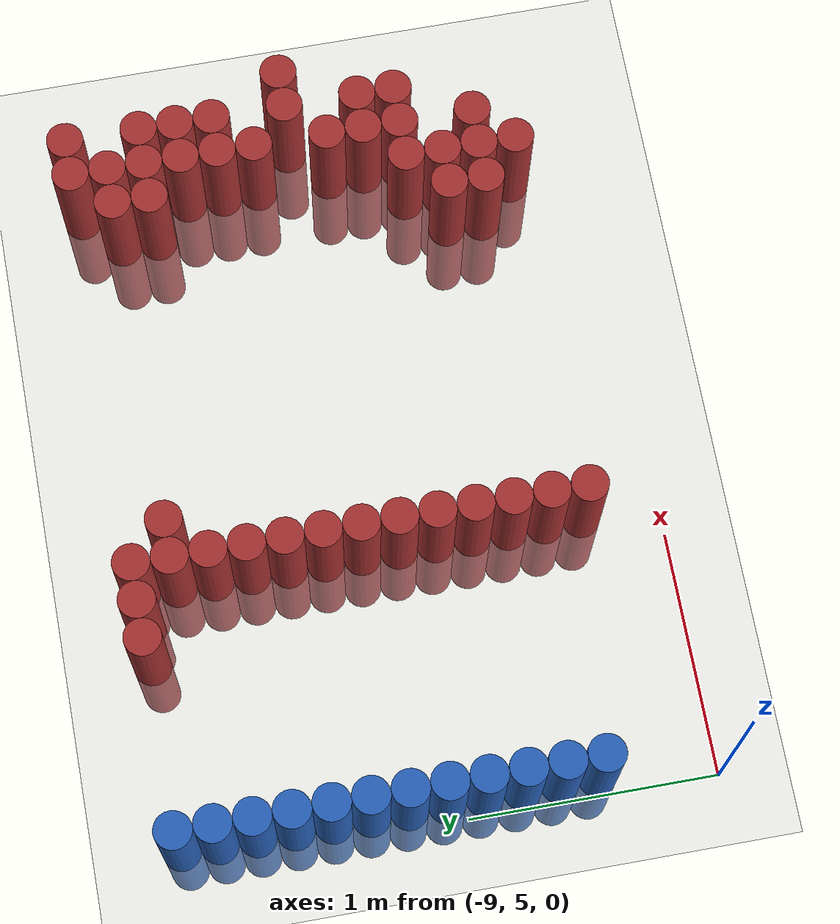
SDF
<sdf version="1.6">
 <world name="default">
  <model name="ground_plane">
   <static>1</static>
   <link name="link">
    <collision name="collision">
     <geometry><plane><normal>0 0 1</normal><size>100 100</size></plane></geometry>
     <surface><friction><ode><mu>100</mu><mu2>50</mu2></ode></friction></surface>
    </collision>
    <visual name="visual">
     <cast_shadows>0</cast_shadows>
     <geometry><plane><normal>0 0 1</normal><size>100 100</size></plane></geometry>
     <material>
      <script><uri>file://media/materials/scripts/gazebo.material</uri><name>Gazebo/Grey</name></script>
     </material>
    </visual>
   </link>
  </model>
  <model name="unit_cylinder_127">
   <static>1</static>
   <pose>-8.925000 5.475000 0.000000 0.000000 0.000000 0.000000</pose>
   <link name="link">
    <inertial>
     <mass>1</mass>
     <inertia><ixx>0.145833</ixx><ixy>0</ixy><ixz>0</ixz><iyy>0.145833</iyy><iyz>0</iyz><izz>0.125</izz></inertia>
    </inertial>
    <collision name="collision">
     <geometry><cylinder><radius>0.075000</radius><length>1</length></cylinder></geometry>
    </collision>
    <visual name="visual">
     <geometry><cylinder><radius>0.075000</radius><length>1</length></cylinder></geometry>
     <material>
      <ambient>0.152000 0.379000 0.720000 1</ambient>
      <diffuse>0.152000 0.379000 0.720000 1</diffuse>
     </material>
     <material>
      <script><name>Gazebo/Grey</name><uri>file://media/materials/scripts/gazebo.material</uri></script>
     </material>
    </visual>
   </link>
  </model>
  <model name="unit_cylinder_128">
   <static>1</static>
   <pose>-8.925000 5.625000 0.000000 0.000000 0.000000 0.000000</pose>
   <link name="link">
    <inertial>
     <mass>1</mass>
     <inertia><ixx>0.145833</ixx><ixy>0</ixy><ixz>0</ixz><iyy>0.145833</iyy><iyz>0</iyz><izz>0.125</izz></inertia>
    </inertial>
    <collision name="collision">
     <geometry><cylinder><radius>0.075000</radius><length>1</length></cylinder></geometry>
    </collision>
    <visual name="visual">
     <geometry><cylinder><radius>0.075000</radius><length>1</length></cylinder></geometry>
     <material>
      <ambient>0.152000 0.379000 0.720000 1</ambient>
      <diffuse>0.152000 0.379000 0.720000 1</diffuse>
     </material>
     <material>
      <script><name>Gazebo/Grey</name><uri>file://media/materials/scripts/gazebo.material</uri></script>
     </material>
    </visual>
   </link>
  </model>
  <model name="unit_cylinder_129">
   <static>1</static>
   <pose>-8.925000 5.775000 0.000000 0.000000 0.000000 0.000000</pose>
   <link name="link">
    <inertial>
     <mass>1</mass>
     <inertia><ixx>0.145833</ixx><ixy>0</ixy><ixz>0</ixz><iyy>0.145833</iyy><iyz>0</iyz><izz>0.125</izz></inertia>
    </inertial>
    <collision name="collision">
     <geometry><cylinder><radius>0.075000</radius><length>1</length></cylinder></geometry>
    </collision>
    <visual name="visual">
     <geometry><cylinder><radius>0.075000</radius><length>1</length></cylinder></geometry>
     <material>
      <ambient>0.152000 0.379000 0.720000 1</ambient>
      <diffuse>0.152000 0.379000 0.720000 1</diffuse>
     </material>
     <material>
      <script><name>Gazebo/Grey</name><uri>file://media/materials/scripts/gazebo.material</uri></script>
     </material>
    </visual>
   </link>
  </model>
  <model name="unit_cylinder_130">
   <static>1</static>
   <pose>-8.925000 5.925000 0.000000 0.000000 0.000000 0.000000</pose>
   <link name="link">
    <inertial>
     <mass>1</mass>
     <inertia><ixx>0.145833</ixx><ixy>0</ixy><ixz>0</ixz><iyy>0.145833</iyy><iyz>0</iyz><izz>0.125</izz></inertia>
    </inertial>
    <collision name="collision">
     <geometry><cylinder><radius>0.075000</radius><length>1</length></cylinder></geometry>
    </collision>
    <visual name="visual">
     <geometry><cylinder><radius>0.075000</radius><length>1</length></cylinder></geometry>
     <material>
      <ambient>0.152000 0.379000 0.720000 1</ambient>
      <diffuse>0.152000 0.379000 0.720000 1</diffuse>
     </material>
     <material>
      <script><name>Gazebo/Grey</name><uri>file://media/materials/scripts/gazebo.material</uri></script>
     </material>
    </visual>
   </link>
  </model>
  <model name="unit_cylinder_131">
   <static>1</static>
   <pose>-8.925000 6.075000 0.000000 0.000000 0.000000 0.000000</pose>
   <link name="link">
    <inertial>
     <mass>1</mass>
     <inertia><ixx>0.145833</ixx><ixy>0</ixy><ixz>0</ixz><iyy>0.145833</iyy><iyz>0</iyz><izz>0.125</izz></inertia>
    </inertial>
    <collision name="collision">
     <geometry><cylinder><radius>0.075000</radius><length>1</length></cylinder></geometry>
    </collision>
    <visual name="visual">
     <geometry><cylinder><radius>0.075000</radius><length>1</length></cylinder></geometry>
     <material>
      <ambient>0.152000 0.379000 0.720000 1</ambient>
      <diffuse>0.152000 0.379000 0.720000 1</diffuse>
     </material>
     <material>
      <script><name>Gazebo/Grey</name><uri>file://media/materials/scripts/gazebo.material</uri></script>
     </material>
    </visual>
   </link>
  </model>
  <model name="unit_cylinder_132">
   <static>1</static>
   <pose>-8.925000 6.225000 0.000000 0.000000 0.000000 0.000000</pose>
   <link name="link">
    <inertial>
     <mass>1</mass>
     <inertia><ixx>0.145833</ixx><ixy>0</ixy><ixz>0</ixz><iyy>0.145833</iyy><iyz>0</iyz><izz>0.125</izz></inertia>
    </inertial>
    <collision name="collision">
     <geometry><cylinder><radius>0.075000</radius><length>1</length></cylinder></geometry>
    </collision>
    <visual name="visual">
     <geometry><cylinder><radius>0.075000</radius><length>1</length></cylinder></geometry>
     <material>
      <ambient>0.152000 0.379000 0.720000 1</ambient>
      <diffuse>0.152000 0.379000 0.720000 1</diffuse>
     </material>
     <material>
      <script><name>Gazebo/Grey</name><uri>file://media/materials/scripts/gazebo.material</uri></script>
     </material>
    </visual>
   </link>
  </model>
  <model name="unit_cylinder_133">
   <static>1</static>
   <pose>-8.925000 6.375000 0.000000 0.000000 0.000000 0.000000</pose>
   <link name="link">
    <inertial>
     <mass>1</mass>
     <inertia><ixx>0.145833</ixx><ixy>0</ixy><ixz>0</ixz><iyy>0.145833</iyy><iyz>0</iyz><izz>0.125</izz></inertia>
    </inertial>
    <collision name="collision">
     <geometry><cylinder><radius>0.075000</radius><length>1</length></cylinder></geometry>
    </collision>
    <visual name="visual">
     <geometry><cylinder><radius>0.075000</radius><length>1</length></cylinder></geometry>
     <material>
      <ambient>0.152000 0.379000 0.720000 1</ambient>
      <diffuse>0.152000 0.379000 0.720000 1</diffuse>
     </material>
     <material>
      <script><name>Gazebo/Grey</name><uri>file://media/materials/scripts/gazebo.material</uri></script>
     </material>
    </visual>
   </link>
  </model>
  <model name="unit_cylinder_134">
   <static>1</static>
   <pose>-8.925000 6.525000 0.000000 0.000000 0.000000 0.000000</pose>
   <link name="link">
    <inertial>
     <mass>1</mass>
     <inertia><ixx>0.145833</ixx><ixy>0</ixy><ixz>0</ixz><iyy>0.145833</iyy><iyz>0</iyz><izz>0.125</izz></inertia>
    </inertial>
    <collision name="collision">
     <geometry><cylinder><radius>0.075000</radius><length>1</length></cylinder></geometry>
    </collision>
    <visual name="visual">
     <geometry><cylinder><radius>0.075000</radius><length>1</length></cylinder></geometry>
     <material>
      <ambient>0.152000 0.379000 0.720000 1</ambient>
      <diffuse>0.152000 0.379000 0.720000 1</diffuse>
     </material>
     <material>
      <script><name>Gazebo/Grey</name><uri>file://media/materials/scripts/gazebo.material</uri></script>
     </material>
    </visual>
   </link>
  </model>
  <model name="unit_cylinder_135">
   <static>1</static>
   <pose>-8.925000 6.675000 0.000000 0.000000 0.000000 0.000000</pose>
   <link name="link">
    <inertial>
     <mass>1</mass>
     <inertia><ixx>0.145833</ixx><ixy>0</ixy><ixz>0</ixz><iyy>0.145833</iyy><iyz>0</iyz><izz>0.125</izz></inertia>
    </inertial>
    <collision name="collision">
     <geometry><cylinder><radius>0.075000</radius><length>1</length></cylinder></geometry>
    </collision>
    <visual name="visual">
     <geometry><cylinder><radius>0.075000</radius><length>1</length></cylinder></geometry>
     <material>
      <ambient>0.152000 0.379000 0.720000 1</ambient>
      <diffuse>0.152000 0.379000 0.720000 1</diffuse>
     </material>
     <material>
      <script><name>Gazebo/Grey</name><uri>file://media/materials/scripts/gazebo.material</uri></script>
     </material>
    </visual>
   </link>
  </model>
  <model name="unit_cylinder_136">
   <static>1</static>
   <pose>-8.925000 6.825000 0.000000 0.000000 0.000000 0.000000</pose>
   <link name="link">
    <inertial>
     <mass>1</mass>
     <inertia><ixx>0.145833</ixx><ixy>0</ixy><ixz>0</ixz><iyy>0.145833</iyy><iyz>0</iyz><izz>0.125</izz></inertia>
    </inertial>
    <collision name="collision">
     <geometry><cylinder><radius>0.075000</radius><length>1</length></cylinder></geometry>
    </collision>
    <visual name="visual">
     <geometry><cylinder><radius>0.075000</radius><length>1</length></cylinder></geometry>
     <material>
      <ambient>0.152000 0.379000 0.720000 1</ambient>
      <diffuse>0.152000 0.379000 0.720000 1</diffuse>
     </material>
     <material>
      <script><name>Gazebo/Grey</name><uri>file://media/materials/scripts/gazebo.material</uri></script>
     </material>
    </visual>
   </link>
  </model>
  <model name="unit_cylinder_137">
   <static>1</static>
   <pose>-8.925000 6.975000 0.000000 0.000000 0.000000 0.000000</pose>
   <link name="link">
    <inertial>
     <mass>1</mass>
     <inertia><ixx>0.145833</ixx><ixy>0</ixy><ixz>0</ixz><iyy>0.145833</iyy><iyz>0</iyz><izz>0.125</izz></inertia>
    </inertial>
    <collision name="collision">
     <geometry><cylinder><radius>0.075000</radius><length>1</length></cylinder></geometry>
    </collision>
    <visual name="visual">
     <geometry><cylinder><radius>0.075000</radius><length>1</length></cylinder></geometry>
     <material>
      <ambient>0.152000 0.379000 0.720000 1</ambient>
      <diffuse>0.152000 0.379000 0.720000 1</diffuse>
     </material>
     <material>
      <script><name>Gazebo/Grey</name><uri>file://media/materials/scripts/gazebo.material</uri></script>
     </material>
    </visual>
   </link>
  </model>
  <model name="unit_cylinder_138">
   <static>1</static>
   <pose>-8.925000 7.125000 0.000000 0.000000 0.000000 0.000000</pose>
   <link name="link">
    <inertial>
     <mass>1</mass>
     <inertia><ixx>0.145833</ixx><ixy>0</ixy><ixz>0</ixz><iyy>0.145833</iyy><iyz>0</iyz><izz>0.125</izz></inertia>
    </inertial>
    <collision name="collision">
     <geometry><cylinder><radius>0.075000</radius><length>1</length></cylinder></geometry>
    </collision>
    <visual name="visual">
     <geometry><cylinder><radius>0.075000</radius><length>1</length></cylinder></geometry>
     <material>
      <ambient>0.152000 0.379000 0.720000 1</ambient>
      <diffuse>0.152000 0.379000 0.720000 1</diffuse>
     </material>
     <material>
      <script><name>Gazebo/Grey</name><uri>file://media/materials/scripts/gazebo.material</uri></script>
     </material>
    </visual>
   </link>
  </model>
  <model name="unit_cylinder_164">
   <static>1</static>
   <pose>-8.175000 7.125000 0.000000 0.000000 0.000000 0.000000</pose>
   <link name="link">
    <inertial>
     <mass>1</mass>
     <inertia><ixx>0.145833</ixx><ixy>0</ixy><ixz>0</ixz><iyy>0.145833</iyy><iyz>0</iyz><izz>0.125</izz></inertia>
    </inertial>
    <collision name="collision">
     <geometry><cylinder><radius>0.075000</radius><length>1</length></cylinder></geometry>
    </collision>
    <visual name="visual">
     <geometry><cylinder><radius>0.075000</radius><length>1</length></cylinder></geometry>
     <material>
      <ambient>0.648000 0.192000 0.192000 1</ambient>
      <diffuse>0.648000 0.192000 0.192000 1</diffuse>
     </material>
     <material>
      <script><name>Gazebo/Grey</name><uri>file://media/materials/scripts/gazebo.material</uri></script>
     </material>
    </visual>
   </link>
  </model>
  <model name="unit_cylinder_182">
   <static>1</static>
   <pose>-8.025000 7.125000 0.000000 0.000000 0.000000 0.000000</pose>
   <link name="link">
    <inertial>
     <mass>1</mass>
     <inertia><ixx>0.145833</ixx><ixy>0</ixy><ixz>0</ixz><iyy>0.145833</iyy><iyz>0</iyz><izz>0.125</izz></inertia>
    </inertial>
    <collision name="collision">
     <geometry><cylinder><radius>0.075000</radius><length>1</length></cylinder></geometry>
    </collision>
    <visual name="visual">
     <geometry><cylinder><radius>0.075000</radius><length>1</length></cylinder></geometry>
     <material>
      <ambient>0.648000 0.192000 0.192000 1</ambient>
      <diffuse>0.648000 0.192000 0.192000 1</diffuse>
     </material>
     <material>
      <script><name>Gazebo/Grey</name><uri>file://media/materials/scripts/gazebo.material</uri></script>
     </material>
    </visual>
   </link>
  </model>
  <model name="unit_cylinder_184">
   <static>1</static>
   <pose>-7.875000 5.325000 0.000000 0.000000 0.000000 0.000000</pose>
   <link name="link">
    <inertial>
     <mass>1</mass>
     <inertia><ixx>0.145833</ixx><ixy>0</ixy><ixz>0</ixz><iyy>0.145833</iyy><iyz>0</iyz><izz>0.125</izz></inertia>
    </inertial>
    <collision name="collision">
     <geometry><cylinder><radius>0.075000</radius><length>1</length></cylinder></geometry>
    </collision>
    <visual name="visual">
     <geometry><cylinder><radius>0.075000</radius><length>1</length></cylinder></geometry>
     <material>
      <ambient>0.648000 0.192000 0.192000 1</ambient>
      <diffuse>0.648000 0.192000 0.192000 1</diffuse>
     </material>
     <material>
      <script><name>Gazebo/Grey</name><uri>file://media/materials/scripts/gazebo.material</uri></script>
     </material>
    </visual>
   </link>
  </model>
  <model name="unit_cylinder_185">
   <static>1</static>
   <pose>-7.875000 5.475000 0.000000 0.000000 0.000000 0.000000</pose>
   <link name="link">
    <inertial>
     <mass>1</mass>
     <inertia><ixx>0.145833</ixx><ixy>0</ixy><ixz>0</ixz><iyy>0.145833</iyy><iyz>0</iyz><izz>0.125</izz></inertia>
    </inertial>
    <collision name="collision">
     <geometry><cylinder><radius>0.075000</radius><length>1</length></cylinder></geometry>
    </collision>
    <visual name="visual">
     <geometry><cylinder><radius>0.075000</radius><length>1</length></cylinder></geometry>
     <material>
      <ambient>0.648000 0.192000 0.192000 1</ambient>
      <diffuse>0.648000 0.192000 0.192000 1</diffuse>
     </material>
     <material>
      <script><name>Gazebo/Grey</name><uri>file://media/materials/scripts/gazebo.material</uri></script>
     </material>
    </visual>
   </link>
  </model>
  <model name="unit_cylinder_186">
   <static>1</static>
   <pose>-7.875000 5.625000 0.000000 0.000000 0.000000 0.000000</pose>
   <link name="link">
    <inertial>
     <mass>1</mass>
     <inertia><ixx>0.145833</ixx><ixy>0</ixy><ixz>0</ixz><iyy>0.145833</iyy><iyz>0</iyz><izz>0.125</izz></inertia>
    </inertial>
    <collision name="collision">
     <geometry><cylinder><radius>0.075000</radius><length>1</length></cylinder></geometry>
    </collision>
    <visual name="visual">
     <geometry><cylinder><radius>0.075000</radius><length>1</length></cylinder></geometry>
     <material>
      <ambient>0.648000 0.192000 0.192000 1</ambient>
      <diffuse>0.648000 0.192000 0.192000 1</diffuse>
     </material>
     <material>
      <script><name>Gazebo/Grey</name><uri>file://media/materials/scripts/gazebo.material</uri></script>
     </material>
    </visual>
   </link>
  </model>
  <model name="unit_cylinder_187">
   <static>1</static>
   <pose>-7.875000 5.775000 0.000000 0.000000 0.000000 0.000000</pose>
   <link name="link">
    <inertial>
     <mass>1</mass>
     <inertia><ixx>0.145833</ixx><ixy>0</ixy><ixz>0</ixz><iyy>0.145833</iyy><iyz>0</iyz><izz>0.125</izz></inertia>
    </inertial>
    <collision name="collision">
     <geometry><cylinder><radius>0.075000</radius><length>1</length></cylinder></geometry>
    </collision>
    <visual name="visual">
     <geometry><cylinder><radius>0.075000</radius><length>1</length></cylinder></geometry>
     <material>
      <ambient>0.648000 0.192000 0.192000 1</ambient>
      <diffuse>0.648000 0.192000 0.192000 1</diffuse>
     </material>
     <material>
      <script><name>Gazebo/Grey</name><uri>file://media/materials/scripts/gazebo.material</uri></script>
     </material>
    </visual>
   </link>
  </model>
  <model name="unit_cylinder_188">
   <static>1</static>
   <pose>-7.875000 5.925000 0.000000 0.000000 0.000000 0.000000</pose>
   <link name="link">
    <inertial>
     <mass>1</mass>
     <inertia><ixx>0.145833</ixx><ixy>0</ixy><ixz>0</ixz><iyy>0.145833</iyy><iyz>0</iyz><izz>0.125</izz></inertia>
    </inertial>
    <collision name="collision">
     <geometry><cylinder><radius>0.075000</radius><length>1</length></cylinder></geometry>
    </collision>
    <visual name="visual">
     <geometry><cylinder><radius>0.075000</radius><length>1</length></cylinder></geometry>
     <material>
      <ambient>0.648000 0.192000 0.192000 1</ambient>
      <diffuse>0.648000 0.192000 0.192000 1</diffuse>
     </material>
     <material>
      <script><name>Gazebo/Grey</name><uri>file://media/materials/scripts/gazebo.material</uri></script>
     </material>
    </visual>
   </link>
  </model>
  <model name="unit_cylinder_189">
   <static>1</static>
   <pose>-7.875000 6.075000 0.000000 0.000000 0.000000 0.000000</pose>
   <link name="link">
    <inertial>
     <mass>1</mass>
     <inertia><ixx>0.145833</ixx><ixy>0</ixy><ixz>0</ixz><iyy>0.145833</iyy><iyz>0</iyz><izz>0.125</izz></inertia>
    </inertial>
    <collision name="collision">
     <geometry><cylinder><radius>0.075000</radius><length>1</length></cylinder></geometry>
    </collision>
    <visual name="visual">
     <geometry><cylinder><radius>0.075000</radius><length>1</length></cylinder></geometry>
     <material>
      <ambient>0.648000 0.192000 0.192000 1</ambient>
      <diffuse>0.648000 0.192000 0.192000 1</diffuse>
     </material>
     <material>
      <script><name>Gazebo/Grey</name><uri>file://media/materials/scripts/gazebo.material</uri></script>
     </material>
    </visual>
   </link>
  </model>
  <model name="unit_cylinder_190">
   <static>1</static>
   <pose>-7.875000 6.225000 0.000000 0.000000 0.000000 0.000000</pose>
   <link name="link">
    <inertial>
     <mass>1</mass>
     <inertia><ixx>0.145833</ixx><ixy>0</ixy><ixz>0</ixz><iyy>0.145833</iyy><iyz>0</iyz><izz>0.125</izz></inertia>
    </inertial>
    <collision name="collision">
     <geometry><cylinder><radius>0.075000</radius><length>1</length></cylinder></geometry>
    </collision>
    <visual name="visual">
     <geometry><cylinder><radius>0.075000</radius><length>1</length></cylinder></geometry>
     <material>
      <ambient>0.648000 0.192000 0.192000 1</ambient>
      <diffuse>0.648000 0.192000 0.192000 1</diffuse>
     </material>
     <material>
      <script><name>Gazebo/Grey</name><uri>file://media/materials/scripts/gazebo.material</uri></script>
     </material>
    </visual>
   </link>
  </model>
  <model name="unit_cylinder_191">
   <static>1</static>
   <pose>-7.875000 6.375000 0.000000 0.000000 0.000000 0.000000</pose>
   <link name="link">
    <inertial>
     <mass>1</mass>
     <inertia><ixx>0.145833</ixx><ixy>0</ixy><ixz>0</ixz><iyy>0.145833</iyy><iyz>0</iyz><izz>0.125</izz></inertia>
    </inertial>
    <collision name="collision">
     <geometry><cylinder><radius>0.075000</radius><length>1</length></cylinder></geometry>
    </collision>
    <visual name="visual">
     <geometry><cylinder><radius>0.075000</radius><length>1</length></cylinder></geometry>
     <material>
      <ambient>0.648000 0.192000 0.192000 1</ambient>
      <diffuse>0.648000 0.192000 0.192000 1</diffuse>
     </material>
     <material>
      <script><name>Gazebo/Grey</name><uri>file://media/materials/scripts/gazebo.material</uri></script>
     </material>
    </visual>
   </link>
  </model>
  <model name="unit_cylinder_192">
   <static>1</static>
   <pose>-7.875000 6.525000 0.000000 0.000000 0.000000 0.000000</pose>
   <link name="link">
    <inertial>
     <mass>1</mass>
     <inertia><ixx>0.145833</ixx><ixy>0</ixy><ixz>0</ixz><iyy>0.145833</iyy><iyz>0</iyz><izz>0.125</izz></inertia>
    </inertial>
    <collision name="collision">
     <geometry><cylinder><radius>0.075000</radius><length>1</length></cylinder></geometry>
    </collision>
    <visual name="visual">
     <geometry><cylinder><radius>0.075000</radius><length>1</length></cylinder></geometry>
     <material>
      <ambient>0.648000 0.192000 0.192000 1</ambient>
      <diffuse>0.648000 0.192000 0.192000 1</diffuse>
     </material>
     <material>
      <script><name>Gazebo/Grey</name><uri>file://media/materials/scripts/gazebo.material</uri></script>
     </material>
    </visual>
   </link>
  </model>
  <model name="unit_cylinder_193">
   <static>1</static>
   <pose>-7.875000 6.675000 0.000000 0.000000 0.000000 0.000000</pose>
   <link name="link">
    <inertial>
     <mass>1</mass>
     <inertia><ixx>0.145833</ixx><ixy>0</ixy><ixz>0</ixz><iyy>0.145833</iyy><iyz>0</iyz><izz>0.125</izz></inertia>
    </inertial>
    <collision name="collision">
     <geometry><cylinder><radius>0.075000</radius><length>1</length></cylinder></geometry>
    </collision>
    <visual name="visual">
     <geometry><cylinder><radius>0.075000</radius><length>1</length></cylinder></geometry>
     <material>
      <ambient>0.648000 0.192000 0.192000 1</ambient>
      <diffuse>0.648000 0.192000 0.192000 1</diffuse>
     </material>
     <material>
      <script><name>Gazebo/Grey</name><uri>file://media/materials/scripts/gazebo.material</uri></script>
     </material>
    </visual>
   </link>
  </model>
  <model name="unit_cylinder_194">
   <static>1</static>
   <pose>-7.875000 6.825000 0.000000 0.000000 0.000000 0.000000</pose>
   <link name="link">
    <inertial>
     <mass>1</mass>
     <inertia><ixx>0.145833</ixx><ixy>0</ixy><ixz>0</ixz><iyy>0.145833</iyy><iyz>0</iyz><izz>0.125</izz></inertia>
    </inertial>
    <collision name="collision">
     <geometry><cylinder><radius>0.075000</radius><length>1</length></cylinder></geometry>
    </collision>
    <visual name="visual">
     <geometry><cylinder><radius>0.075000</radius><length>1</length></cylinder></geometry>
     <material>
      <ambient>0.648000 0.192000 0.192000 1</ambient>
      <diffuse>0.648000 0.192000 0.192000 1</diffuse>
     </material>
     <material>
      <script><name>Gazebo/Grey</name><uri>file://media/materials/scripts/gazebo.material</uri></script>
     </material>
    </visual>
   </link>
  </model>
  <model name="unit_cylinder_195">
   <static>1</static>
   <pose>-7.875000 6.975000 0.000000 0.000000 0.000000 0.000000</pose>
   <link name="link">
    <inertial>
     <mass>1</mass>
     <inertia><ixx>0.145833</ixx><ixy>0</ixy><ixz>0</ixz><iyy>0.145833</iyy><iyz>0</iyz><izz>0.125</izz></inertia>
    </inertial>
    <collision name="collision">
     <geometry><cylinder><radius>0.075000</radius><length>1</length></cylinder></geometry>
    </collision>
    <visual name="visual">
     <geometry><cylinder><radius>0.075000</radius><length>1</length></cylinder></geometry>
     <material>
      <ambient>0.648000 0.192000 0.192000 1</ambient>
      <diffuse>0.648000 0.192000 0.192000 1</diffuse>
     </material>
     <material>
      <script><name>Gazebo/Grey</name><uri>file://media/materials/scripts/gazebo.material</uri></script>
     </material>
    </visual>
   </link>
  </model>
  <model name="unit_cylinder_196">
   <static>1</static>
   <pose>-7.875000 7.125000 0.000000 0.000000 0.000000 0.000000</pose>
   <link name="link">
    <inertial>
     <mass>1</mass>
     <inertia><ixx>0.145833</ixx><ixy>0</ixy><ixz>0</ixz><iyy>0.145833</iyy><iyz>0</iyz><izz>0.125</izz></inertia>
    </inertial>
    <collision name="collision">
     <geometry><cylinder><radius>0.075000</radius><length>1</length></cylinder></geometry>
    </collision>
    <visual name="visual">
     <geometry><cylinder><radius>0.075000</radius><length>1</length></cylinder></geometry>
     <material>
      <ambient>0.648000 0.192000 0.192000 1</ambient>
      <diffuse>0.648000 0.192000 0.192000 1</diffuse>
     </material>
     <material>
      <script><name>Gazebo/Grey</name><uri>file://media/materials/scripts/gazebo.material</uri></script>
     </material>
    </visual>
   </link>
  </model>
  <model name="unit_cylinder_197">
   <static>1</static>
   <pose>-7.725000 6.975000 0.000000 0.000000 0.000000 0.000000</pose>
   <link name="link">
    <inertial>
     <mass>1</mass>
     <inertia><ixx>0.145833</ixx><ixy>0</ixy><ixz>0</ixz><iyy>0.145833</iyy><iyz>0</iyz><izz>0.125</izz></inertia>
    </inertial>
    <collision name="collision">
     <geometry><cylinder><radius>0.075000</radius><length>1</length></cylinder></geometry>
    </collision>
    <visual name="visual">
     <geometry><cylinder><radius>0.075000</radius><length>1</length></cylinder></geometry>
     <material>
      <ambient>0.648000 0.192000 0.192000 1</ambient>
      <diffuse>0.648000 0.192000 0.192000 1</diffuse>
     </material>
     <material>
      <script><name>Gazebo/Grey</name><uri>file://media/materials/scripts/gazebo.material</uri></script>
     </material>
    </visual>
   </link>
  </model>
  <model name="unit_cylinder_202">
   <static>1</static>
   <pose>-6.525000 5.475000 0.000000 0.000000 0.000000 0.000000</pose>
   <link name="link">
    <inertial>
     <mass>1</mass>
     <inertia><ixx>0.145833</ixx><ixy>0</ixy><ixz>0</ixz><iyy>0.145833</iyy><iyz>0</iyz><izz>0.125</izz></inertia>
    </inertial>
    <collision name="collision">
     <geometry><cylinder><radius>0.075000</radius><length>1</length></cylinder></geometry>
    </collision>
    <visual name="visual">
     <geometry><cylinder><radius>0.075000</radius><length>1</length></cylinder></geometry>
     <material>
      <ambient>0.648000 0.192000 0.192000 1</ambient>
      <diffuse>0.648000 0.192000 0.192000 1</diffuse>
     </material>
     <material>
      <script><name>Gazebo/Grey</name><uri>file://media/materials/scripts/gazebo.material</uri></script>
     </material>
    </visual>
   </link>
  </model>
  <model name="unit_cylinder_203">
   <static>1</static>
   <pose>-6.525000 5.625000 0.000000 0.000000 0.000000 0.000000</pose>
   <link name="link">
    <inertial>
     <mass>1</mass>
     <inertia><ixx>0.145833</ixx><ixy>0</ixy><ixz>0</ixz><iyy>0.145833</iyy><iyz>0</iyz><izz>0.125</izz></inertia>
    </inertial>
    <collision name="collision">
     <geometry><cylinder><radius>0.075000</radius><length>1</length></cylinder></geometry>
    </collision>
    <visual name="visual">
     <geometry><cylinder><radius>0.075000</radius><length>1</length></cylinder></geometry>
     <material>
      <ambient>0.648000 0.192000 0.192000 1</ambient>
      <diffuse>0.648000 0.192000 0.192000 1</diffuse>
     </material>
     <material>
      <script><name>Gazebo/Grey</name><uri>file://media/materials/scripts/gazebo.material</uri></script>
     </material>
    </visual>
   </link>
  </model>
  <model name="unit_cylinder_208">
   <static>1</static>
   <pose>-6.375000 5.325000 0.000000 0.000000 0.000000 0.000000</pose>
   <link name="link">
    <inertial>
     <mass>1</mass>
     <inertia><ixx>0.145833</ixx><ixy>0</ixy><ixz>0</ixz><iyy>0.145833</iyy><iyz>0</iyz><izz>0.125</izz></inertia>
    </inertial>
    <collision name="collision">
     <geometry><cylinder><radius>0.075000</radius><length>1</length></cylinder></geometry>
    </collision>
    <visual name="visual">
     <geometry><cylinder><radius>0.075000</radius><length>1</length></cylinder></geometry>
     <material>
      <ambient>0.648000 0.192000 0.192000 1</ambient>
      <diffuse>0.648000 0.192000 0.192000 1</diffuse>
     </material>
     <material>
      <script><name>Gazebo/Grey</name><uri>file://media/materials/scripts/gazebo.material</uri></script>
     </material>
    </visual>
   </link>
  </model>
  <model name="unit_cylinder_209">
   <static>1</static>
   <pose>-6.375000 5.475000 0.000000 0.000000 0.000000 0.000000</pose>
   <link name="link">
    <inertial>
     <mass>1</mass>
     <inertia><ixx>0.145833</ixx><ixy>0</ixy><ixz>0</ixz><iyy>0.145833</iyy><iyz>0</iyz><izz>0.125</izz></inertia>
    </inertial>
    <collision name="collision">
     <geometry><cylinder><radius>0.075000</radius><length>1</length></cylinder></geometry>
    </collision>
    <visual name="visual">
     <geometry><cylinder><radius>0.075000</radius><length>1</length></cylinder></geometry>
     <material>
      <ambient>0.648000 0.192000 0.192000 1</ambient>
      <diffuse>0.648000 0.192000 0.192000 1</diffuse>
     </material>
     <material>
      <script><name>Gazebo/Grey</name><uri>file://media/materials/scripts/gazebo.material</uri></script>
     </material>
    </visual>
   </link>
  </model>
  <model name="unit_cylinder_210">
   <static>1</static>
   <pose>-6.375000 5.625000 0.000000 0.000000 0.000000 0.000000</pose>
   <link name="link">
    <inertial>
     <mass>1</mass>
     <inertia><ixx>0.145833</ixx><ixy>0</ixy><ixz>0</ixz><iyy>0.145833</iyy><iyz>0</iyz><izz>0.125</izz></inertia>
    </inertial>
    <collision name="collision">
     <geometry><cylinder><radius>0.075000</radius><length>1</length></cylinder></geometry>
    </collision>
    <visual name="visual">
     <geometry><cylinder><radius>0.075000</radius><length>1</length></cylinder></geometry>
     <material>
      <ambient>0.648000 0.192000 0.192000 1</ambient>
      <diffuse>0.648000 0.192000 0.192000 1</diffuse>
     </material>
     <material>
      <script><name>Gazebo/Grey</name><uri>file://media/materials/scripts/gazebo.material</uri></script>
     </material>
    </visual>
   </link>
  </model>
  <model name="unit_cylinder_211">
   <static>1</static>
   <pose>-6.375000 5.775000 0.000000 0.000000 0.000000 0.000000</pose>
   <link name="link">
    <inertial>
     <mass>1</mass>
     <inertia><ixx>0.145833</ixx><ixy>0</ixy><ixz>0</ixz><iyy>0.145833</iyy><iyz>0</iyz><izz>0.125</izz></inertia>
    </inertial>
    <collision name="collision">
     <geometry><cylinder><radius>0.075000</radius><length>1</length></cylinder></geometry>
    </collision>
    <visual name="visual">
     <geometry><cylinder><radius>0.075000</radius><length>1</length></cylinder></geometry>
     <material>
      <ambient>0.648000 0.192000 0.192000 1</ambient>
      <diffuse>0.648000 0.192000 0.192000 1</diffuse>
     </material>
     <material>
      <script><name>Gazebo/Grey</name><uri>file://media/materials/scripts/gazebo.material</uri></script>
     </material>
    </visual>
   </link>
  </model>
  <model name="unit_cylinder_212">
   <static>1</static>
   <pose>-6.375000 6.825000 0.000000 0.000000 0.000000 0.000000</pose>
   <link name="link">
    <inertial>
     <mass>1</mass>
     <inertia><ixx>0.145833</ixx><ixy>0</ixy><ixz>0</ixz><iyy>0.145833</iyy><iyz>0</iyz><izz>0.125</izz></inertia>
    </inertial>
    <collision name="collision">
     <geometry><cylinder><radius>0.075000</radius><length>1</length></cylinder></geometry>
    </collision>
    <visual name="visual">
     <geometry><cylinder><radius>0.075000</radius><length>1</length></cylinder></geometry>
     <material>
      <ambient>0.648000 0.192000 0.192000 1</ambient>
      <diffuse>0.648000 0.192000 0.192000 1</diffuse>
     </material>
     <material>
      <script><name>Gazebo/Grey</name><uri>file://media/materials/scripts/gazebo.material</uri></script>
     </material>
    </visual>
   </link>
  </model>
  <model name="unit_cylinder_213">
   <static>1</static>
   <pose>-6.375000 6.975000 0.000000 0.000000 0.000000 0.000000</pose>
   <link name="link">
    <inertial>
     <mass>1</mass>
     <inertia><ixx>0.145833</ixx><ixy>0</ixy><ixz>0</ixz><iyy>0.145833</iyy><iyz>0</iyz><izz>0.125</izz></inertia>
    </inertial>
    <collision name="collision">
     <geometry><cylinder><radius>0.075000</radius><length>1</length></cylinder></geometry>
    </collision>
    <visual name="visual">
     <geometry><cylinder><radius>0.075000</radius><length>1</length></cylinder></geometry>
     <material>
      <ambient>0.648000 0.192000 0.192000 1</ambient>
      <diffuse>0.648000 0.192000 0.192000 1</diffuse>
     </material>
     <material>
      <script><name>Gazebo/Grey</name><uri>file://media/materials/scripts/gazebo.material</uri></script>
     </material>
    </visual>
   </link>
  </model>
  <model name="unit_cylinder_217">
   <static>1</static>
   <pose>-6.225000 5.475000 0.000000 0.000000 0.000000 0.000000</pose>
   <link name="link">
    <inertial>
     <mass>1</mass>
     <inertia><ixx>0.145833</ixx><ixy>0</ixy><ixz>0</ixz><iyy>0.145833</iyy><iyz>0</iyz><izz>0.125</izz></inertia>
    </inertial>
    <collision name="collision">
     <geometry><cylinder><radius>0.075000</radius><length>1</length></cylinder></geometry>
    </collision>
    <visual name="visual">
     <geometry><cylinder><radius>0.075000</radius><length>1</length></cylinder></geometry>
     <material>
      <ambient>0.648000 0.192000 0.192000 1</ambient>
      <diffuse>0.648000 0.192000 0.192000 1</diffuse>
     </material>
     <material>
      <script><name>Gazebo/Grey</name><uri>file://media/materials/scripts/gazebo.material</uri></script>
     </material>
    </visual>
   </link>
  </model>
  <model name="unit_cylinder_218">
   <static>1</static>
   <pose>-6.225000 5.775000 0.000000 0.000000 0.000000 0.000000</pose>
   <link name="link">
    <inertial>
     <mass>1</mass>
     <inertia><ixx>0.145833</ixx><ixy>0</ixy><ixz>0</ixz><iyy>0.145833</iyy><iyz>0</iyz><izz>0.125</izz></inertia>
    </inertial>
    <collision name="collision">
     <geometry><cylinder><radius>0.075000</radius><length>1</length></cylinder></geometry>
    </collision>
    <visual name="visual">
     <geometry><cylinder><radius>0.075000</radius><length>1</length></cylinder></geometry>
     <material>
      <ambient>0.648000 0.192000 0.192000 1</ambient>
      <diffuse>0.648000 0.192000 0.192000 1</diffuse>
     </material>
     <material>
      <script><name>Gazebo/Grey</name><uri>file://media/materials/scripts/gazebo.material</uri></script>
     </material>
    </visual>
   </link>
  </model>
  <model name="unit_cylinder_219">
   <static>1</static>
   <pose>-6.225000 5.925000 0.000000 0.000000 0.000000 0.000000</pose>
   <link name="link">
    <inertial>
     <mass>1</mass>
     <inertia><ixx>0.145833</ixx><ixy>0</ixy><ixz>0</ixz><iyy>0.145833</iyy><iyz>0</iyz><izz>0.125</izz></inertia>
    </inertial>
    <collision name="collision">
     <geometry><cylinder><radius>0.075000</radius><length>1</length></cylinder></geometry>
    </collision>
    <visual name="visual">
     <geometry><cylinder><radius>0.075000</radius><length>1</length></cylinder></geometry>
     <material>
      <ambient>0.648000 0.192000 0.192000 1</ambient>
      <diffuse>0.648000 0.192000 0.192000 1</diffuse>
     </material>
     <material>
      <script><name>Gazebo/Grey</name><uri>file://media/materials/scripts/gazebo.material</uri></script>
     </material>
    </visual>
   </link>
  </model>
  <model name="unit_cylinder_220">
   <static>1</static>
   <pose>-6.225000 6.075000 0.000000 0.000000 0.000000 0.000000</pose>
   <link name="link">
    <inertial>
     <mass>1</mass>
     <inertia><ixx>0.145833</ixx><ixy>0</ixy><ixz>0</ixz><iyy>0.145833</iyy><iyz>0</iyz><izz>0.125</izz></inertia>
    </inertial>
    <collision name="collision">
     <geometry><cylinder><radius>0.075000</radius><length>1</length></cylinder></geometry>
    </collision>
    <visual name="visual">
     <geometry><cylinder><radius>0.075000</radius><length>1</length></cylinder></geometry>
     <material>
      <ambient>0.648000 0.192000 0.192000 1</ambient>
      <diffuse>0.648000 0.192000 0.192000 1</diffuse>
     </material>
     <material>
      <script><name>Gazebo/Grey</name><uri>file://media/materials/scripts/gazebo.material</uri></script>
     </material>
    </visual>
   </link>
  </model>
  <model name="unit_cylinder_221">
   <static>1</static>
   <pose>-6.225000 6.375000 0.000000 0.000000 0.000000 0.000000</pose>
   <link name="link">
    <inertial>
     <mass>1</mass>
     <inertia><ixx>0.145833</ixx><ixy>0</ixy><ixz>0</ixz><iyy>0.145833</iyy><iyz>0</iyz><izz>0.125</izz></inertia>
    </inertial>
    <collision name="collision">
     <geometry><cylinder><radius>0.075000</radius><length>1</length></cylinder></geometry>
    </collision>
    <visual name="visual">
     <geometry><cylinder><radius>0.075000</radius><length>1</length></cylinder></geometry>
     <material>
      <ambient>0.648000 0.192000 0.192000 1</ambient>
      <diffuse>0.648000 0.192000 0.192000 1</diffuse>
     </material>
     <material>
      <script><name>Gazebo/Grey</name><uri>file://media/materials/scripts/gazebo.material</uri></script>
     </material>
    </visual>
   </link>
  </model>
  <model name="unit_cylinder_222">
   <static>1</static>
   <pose>-6.225000 6.525000 0.000000 0.000000 0.000000 0.000000</pose>
   <link name="link">
    <inertial>
     <mass>1</mass>
     <inertia><ixx>0.145833</ixx><ixy>0</ixy><ixz>0</ixz><iyy>0.145833</iyy><iyz>0</iyz><izz>0.125</izz></inertia>
    </inertial>
    <collision name="collision">
     <geometry><cylinder><radius>0.075000</radius><length>1</length></cylinder></geometry>
    </collision>
    <visual name="visual">
     <geometry><cylinder><radius>0.075000</radius><length>1</length></cylinder></geometry>
     <material>
      <ambient>0.648000 0.192000 0.192000 1</ambient>
      <diffuse>0.648000 0.192000 0.192000 1</diffuse>
     </material>
     <material>
      <script><name>Gazebo/Grey</name><uri>file://media/materials/scripts/gazebo.material</uri></script>
     </material>
    </visual>
   </link>
  </model>
  <model name="unit_cylinder_223">
   <static>1</static>
   <pose>-6.225000 6.675000 0.000000 0.000000 0.000000 0.000000</pose>
   <link name="link">
    <inertial>
     <mass>1</mass>
     <inertia><ixx>0.145833</ixx><ixy>0</ixy><ixz>0</ixz><iyy>0.145833</iyy><iyz>0</iyz><izz>0.125</izz></inertia>
    </inertial>
    <collision name="collision">
     <geometry><cylinder><radius>0.075000</radius><length>1</length></cylinder></geometry>
    </collision>
    <visual name="visual">
     <geometry><cylinder><radius>0.075000</radius><length>1</length></cylinder></geometry>
     <material>
      <ambient>0.648000 0.192000 0.192000 1</ambient>
      <diffuse>0.648000 0.192000 0.192000 1</diffuse>
     </material>
     <material>
      <script><name>Gazebo/Grey</name><uri>file://media/materials/scripts/gazebo.material</uri></script>
     </material>
    </visual>
   </link>
  </model>
  <model name="unit_cylinder_224">
   <static>1</static>
   <pose>-6.225000 6.825000 0.000000 0.000000 0.000000 0.000000</pose>
   <link name="link">
    <inertial>
     <mass>1</mass>
     <inertia><ixx>0.145833</ixx><ixy>0</ixy><ixz>0</ixz><iyy>0.145833</iyy><iyz>0</iyz><izz>0.125</izz></inertia>
    </inertial>
    <collision name="collision">
     <geometry><cylinder><radius>0.075000</radius><length>1</length></cylinder></geometry>
    </collision>
    <visual name="visual">
     <geometry><cylinder><radius>0.075000</radius><length>1</length></cylinder></geometry>
     <material>
      <ambient>0.648000 0.192000 0.192000 1</ambient>
      <diffuse>0.648000 0.192000 0.192000 1</diffuse>
     </material>
     <material>
      <script><name>Gazebo/Grey</name><uri>file://media/materials/scripts/gazebo.material</uri></script>
     </material>
    </visual>
   </link>
  </model>
  <model name="unit_cylinder_225">
   <static>1</static>
   <pose>-6.225000 6.975000 0.000000 0.000000 0.000000 0.000000</pose>
   <link name="link">
    <inertial>
     <mass>1</mass>
     <inertia><ixx>0.145833</ixx><ixy>0</ixy><ixz>0</ixz><iyy>0.145833</iyy><iyz>0</iyz><izz>0.125</izz></inertia>
    </inertial>
    <collision name="collision">
     <geometry><cylinder><radius>0.075000</radius><length>1</length></cylinder></geometry>
    </collision>
    <visual name="visual">
     <geometry><cylinder><radius>0.075000</radius><length>1</length></cylinder></geometry>
     <material>
      <ambient>0.648000 0.192000 0.192000 1</ambient>
      <diffuse>0.648000 0.192000 0.192000 1</diffuse>
     </material>
     <material>
      <script><name>Gazebo/Grey</name><uri>file://media/materials/scripts/gazebo.material</uri></script>
     </material>
    </visual>
   </link>
  </model>
  <model name="unit_cylinder_226">
   <static>1</static>
   <pose>-6.225000 7.125000 0.000000 0.000000 0.000000 0.000000</pose>
   <link name="link">
    <inertial>
     <mass>1</mass>
     <inertia><ixx>0.145833</ixx><ixy>0</ixy><ixz>0</ixz><iyy>0.145833</iyy><iyz>0</iyz><izz>0.125</izz></inertia>
    </inertial>
    <collision name="collision">
     <geometry><cylinder><radius>0.075000</radius><length>1</length></cylinder></geometry>
    </collision>
    <visual name="visual">
     <geometry><cylinder><radius>0.075000</radius><length>1</length></cylinder></geometry>
     <material>
      <ambient>0.648000 0.192000 0.192000 1</ambient>
      <diffuse>0.648000 0.192000 0.192000 1</diffuse>
     </material>
     <material>
      <script><name>Gazebo/Grey</name><uri>file://media/materials/scripts/gazebo.material</uri></script>
     </material>
    </visual>
   </link>
  </model>
  <model name="unit_cylinder_231">
   <static>1</static>
   <pose>-6.075000 5.775000 0.000000 0.000000 0.000000 0.000000</pose>
   <link name="link">
    <inertial>
     <mass>1</mass>
     <inertia><ixx>0.145833</ixx><ixy>0</ixy><ixz>0</ixz><iyy>0.145833</iyy><iyz>0</iyz><izz>0.125</izz></inertia>
    </inertial>
    <collision name="collision">
     <geometry><cylinder><radius>0.075000</radius><length>1</length></cylinder></geometry>
    </collision>
    <visual name="visual">
     <geometry><cylinder><radius>0.075000</radius><length>1</length></cylinder></geometry>
     <material>
      <ambient>0.648000 0.192000 0.192000 1</ambient>
      <diffuse>0.648000 0.192000 0.192000 1</diffuse>
     </material>
     <material>
      <script><name>Gazebo/Grey</name><uri>file://media/materials/scripts/gazebo.material</uri></script>
     </material>
    </visual>
   </link>
  </model>
  <model name="unit_cylinder_232">
   <static>1</static>
   <pose>-6.075000 5.925000 0.000000 0.000000 0.000000 0.000000</pose>
   <link name="link">
    <inertial>
     <mass>1</mass>
     <inertia><ixx>0.145833</ixx><ixy>0</ixy><ixz>0</ixz><iyy>0.145833</iyy><iyz>0</iyz><izz>0.125</izz></inertia>
    </inertial>
    <collision name="collision">
     <geometry><cylinder><radius>0.075000</radius><length>1</length></cylinder></geometry>
    </collision>
    <visual name="visual">
     <geometry><cylinder><radius>0.075000</radius><length>1</length></cylinder></geometry>
     <material>
      <ambient>0.648000 0.192000 0.192000 1</ambient>
      <diffuse>0.648000 0.192000 0.192000 1</diffuse>
     </material>
     <material>
      <script><name>Gazebo/Grey</name><uri>file://media/materials/scripts/gazebo.material</uri></script>
     </material>
    </visual>
   </link>
  </model>
  <model name="unit_cylinder_233">
   <static>1</static>
   <pose>-6.075000 6.225000 0.000000 0.000000 0.000000 0.000000</pose>
   <link name="link">
    <inertial>
     <mass>1</mass>
     <inertia><ixx>0.145833</ixx><ixy>0</ixy><ixz>0</ixz><iyy>0.145833</iyy><iyz>0</iyz><izz>0.125</izz></inertia>
    </inertial>
    <collision name="collision">
     <geometry><cylinder><radius>0.075000</radius><length>1</length></cylinder></geometry>
    </collision>
    <visual name="visual">
     <geometry><cylinder><radius>0.075000</radius><length>1</length></cylinder></geometry>
     <material>
      <ambient>0.648000 0.192000 0.192000 1</ambient>
      <diffuse>0.648000 0.192000 0.192000 1</diffuse>
     </material>
     <material>
      <script><name>Gazebo/Grey</name><uri>file://media/materials/scripts/gazebo.material</uri></script>
     </material>
    </visual>
   </link>
  </model>
  <model name="unit_cylinder_234">
   <static>1</static>
   <pose>-6.075000 6.525000 0.000000 0.000000 0.000000 0.000000</pose>
   <link name="link">
    <inertial>
     <mass>1</mass>
     <inertia><ixx>0.145833</ixx><ixy>0</ixy><ixz>0</ixz><iyy>0.145833</iyy><iyz>0</iyz><izz>0.125</izz></inertia>
    </inertial>
    <collision name="collision">
     <geometry><cylinder><radius>0.075000</radius><length>1</length></cylinder></geometry>
    </collision>
    <visual name="visual">
     <geometry><cylinder><radius>0.075000</radius><length>1</length></cylinder></geometry>
     <material>
      <ambient>0.648000 0.192000 0.192000 1</ambient>
      <diffuse>0.648000 0.192000 0.192000 1</diffuse>
     </material>
     <material>
      <script><name>Gazebo/Grey</name><uri>file://media/materials/scripts/gazebo.material</uri></script>
     </material>
    </visual>
   </link>
  </model>
  <model name="unit_cylinder_235">
   <static>1</static>
   <pose>-6.075000 6.675000 0.000000 0.000000 0.000000 0.000000</pose>
   <link name="link">
    <inertial>
     <mass>1</mass>
     <inertia><ixx>0.145833</ixx><ixy>0</ixy><ixz>0</ixz><iyy>0.145833</iyy><iyz>0</iyz><izz>0.125</izz></inertia>
    </inertial>
    <collision name="collision">
     <geometry><cylinder><radius>0.075000</radius><length>1</length></cylinder></geometry>
    </collision>
    <visual name="visual">
     <geometry><cylinder><radius>0.075000</radius><length>1</length></cylinder></geometry>
     <material>
      <ambient>0.648000 0.192000 0.192000 1</ambient>
      <diffuse>0.648000 0.192000 0.192000 1</diffuse>
     </material>
     <material>
      <script><name>Gazebo/Grey</name><uri>file://media/materials/scripts/gazebo.material</uri></script>
     </material>
    </visual>
   </link>
  </model>
  <model name="unit_cylinder_236">
   <static>1</static>
   <pose>-6.075000 6.825000 0.000000 0.000000 0.000000 0.000000</pose>
   <link name="link">
    <inertial>
     <mass>1</mass>
     <inertia><ixx>0.145833</ixx><ixy>0</ixy><ixz>0</ixz><iyy>0.145833</iyy><iyz>0</iyz><izz>0.125</izz></inertia>
    </inertial>
    <collision name="collision">
     <geometry><cylinder><radius>0.075000</radius><length>1</length></cylinder></geometry>
    </collision>
    <visual name="visual">
     <geometry><cylinder><radius>0.075000</radius><length>1</length></cylinder></geometry>
     <material>
      <ambient>0.648000 0.192000 0.192000 1</ambient>
      <diffuse>0.648000 0.192000 0.192000 1</diffuse>
     </material>
     <material>
      <script><name>Gazebo/Grey</name><uri>file://media/materials/scripts/gazebo.material</uri></script>
     </material>
    </visual>
   </link>
  </model>
  <model name="unit_cylinder_237">
   <static>1</static>
   <pose>-6.075000 7.125000 0.000000 0.000000 0.000000 0.000000</pose>
   <link name="link">
    <inertial>
     <mass>1</mass>
     <inertia><ixx>0.145833</ixx><ixy>0</ixy><ixz>0</ixz><iyy>0.145833</iyy><iyz>0</iyz><izz>0.125</izz></inertia>
    </inertial>
    <collision name="collision">
     <geometry><cylinder><radius>0.075000</radius><length>1</length></cylinder></geometry>
    </collision>
    <visual name="visual">
     <geometry><cylinder><radius>0.075000</radius><length>1</length></cylinder></geometry>
     <material>
      <ambient>0.648000 0.192000 0.192000 1</ambient>
      <diffuse>0.648000 0.192000 0.192000 1</diffuse>
     </material>
     <material>
      <script><name>Gazebo/Grey</name><uri>file://media/materials/scripts/gazebo.material</uri></script>
     </material>
    </visual>
   </link>
  </model>
  <model name="unit_cylinder_242">
   <static>1</static>
   <pose>-5.925000 6.225000 0.000000 0.000000 0.000000 0.000000</pose>
   <link name="link">
    <inertial>
     <mass>1</mass>
     <inertia><ixx>0.145833</ixx><ixy>0</ixy><ixz>0</ixz><iyy>0.145833</iyy><iyz>0</iyz><izz>0.125</izz></inertia>
    </inertial>
    <collision name="collision">
     <geometry><cylinder><radius>0.075000</radius><length>1</length></cylinder></geometry>
    </collision>
    <visual name="visual">
     <geometry><cylinder><radius>0.075000</radius><length>1</length></cylinder></geometry>
     <material>
      <ambient>0.648000 0.192000 0.192000 1</ambient>
      <diffuse>0.648000 0.192000 0.192000 1</diffuse>
     </material>
     <material>
      <script><name>Gazebo/Grey</name><uri>file://media/materials/scripts/gazebo.material</uri></script>
     </material>
    </visual>
   </link>
  </model>
 </world>
</sdf>
